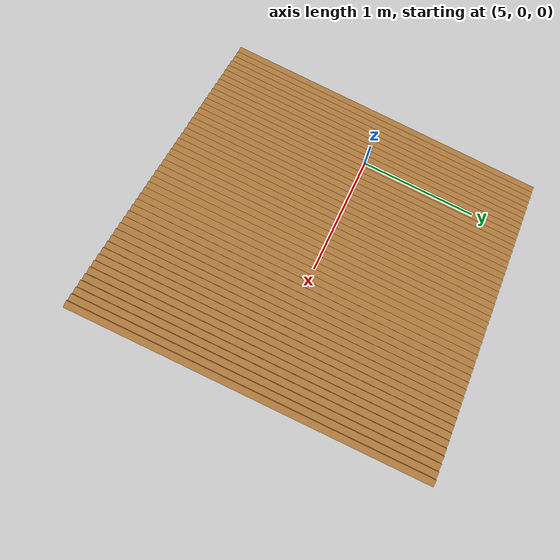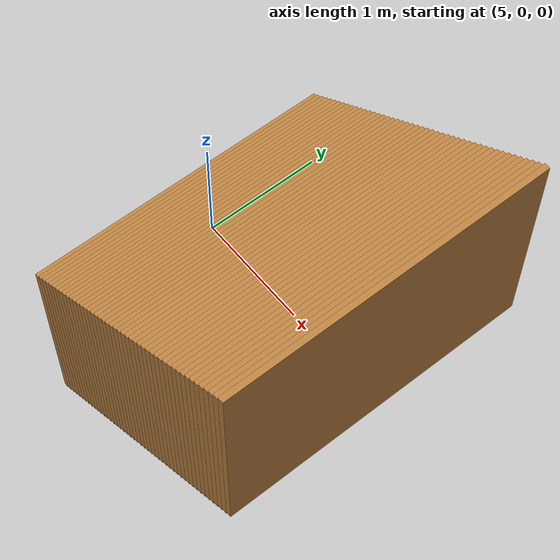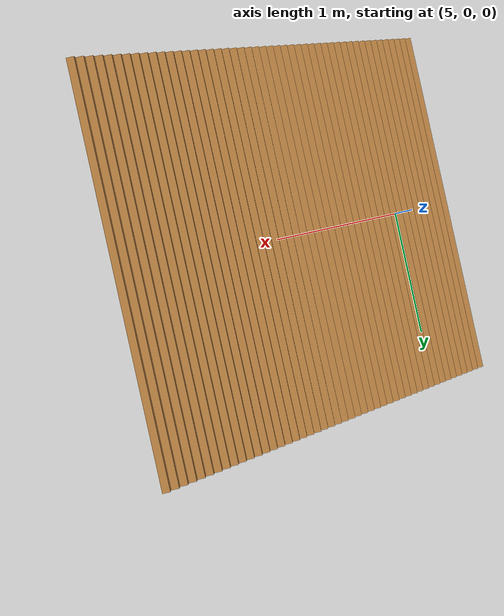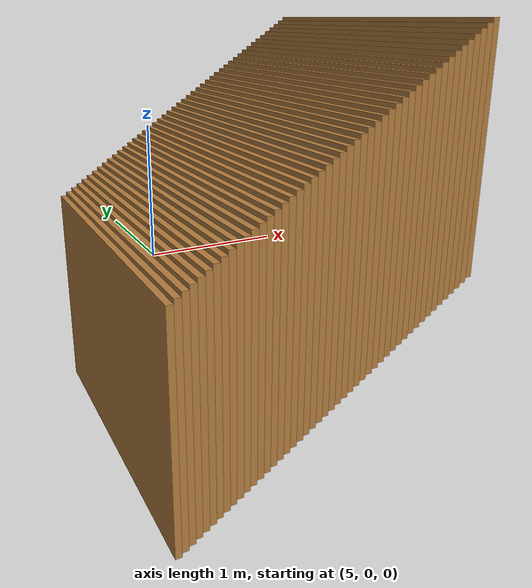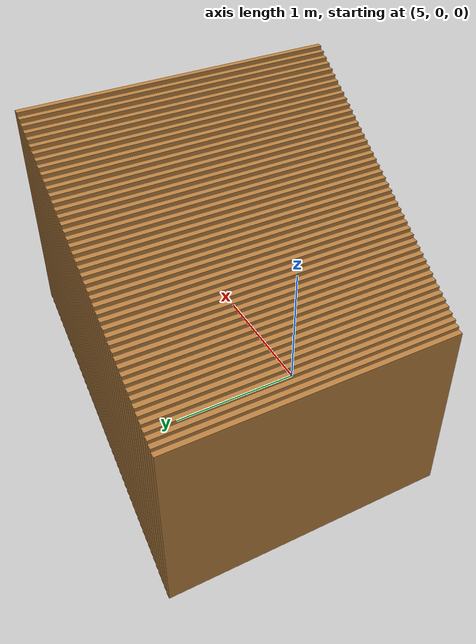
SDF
<sdf version="1.10">
 <world name="loader_soil_slice">
  <model name="soil_column_092">
   <static>true</static>
   <pose>4.625000 0 -0.701958 0 0 0</pose>
   <link name="link">
    <visual name="visual">
     <geometry><box><size>0.050000 2.700000 1.800000</size></box></geometry>
     <material><ambient>0.58 0.38 0.18 1</ambient><diffuse>0.72 0.50 0.25 1</diffuse></material>
    </visual>
   </link>
  </model>
  <model name="soil_column_093">
   <static>true</static>
   <pose>4.675000 0 -0.668232 0 0 0</pose>
   <link name="link">
    <visual name="visual">
     <geometry><box><size>0.050000 2.700000 1.800000</size></box></geometry>
     <material><ambient>0.58 0.38 0.18 1</ambient><diffuse>0.72 0.50 0.25 1</diffuse></material>
    </visual>
   </link>
  </model>
  <model name="soil_column_094">
   <static>true</static>
   <pose>4.725000 0 -0.634507 0 0 0</pose>
   <link name="link">
    <visual name="visual">
     <geometry><box><size>0.050000 2.700000 1.800000</size></box></geometry>
     <material><ambient>0.58 0.38 0.18 1</ambient><diffuse>0.72 0.50 0.25 1</diffuse></material>
    </visual>
   </link>
  </model>
  <model name="soil_column_095">
   <static>true</static>
   <pose>4.775000 0 -0.600781 0 0 0</pose>
   <link name="link">
    <visual name="visual">
     <geometry><box><size>0.050000 2.700000 1.800000</size></box></geometry>
     <material><ambient>0.58 0.38 0.18 1</ambient><diffuse>0.72 0.50 0.25 1</diffuse></material>
    </visual>
   </link>
  </model>
  <model name="soil_column_096">
   <static>true</static>
   <pose>4.825000 0 -0.567056 0 0 0</pose>
   <link name="link">
    <visual name="visual">
     <geometry><box><size>0.050000 2.700000 1.800000</size></box></geometry>
     <material><ambient>0.58 0.38 0.18 1</ambient><diffuse>0.72 0.50 0.25 1</diffuse></material>
    </visual>
   </link>
  </model>
  <model name="soil_column_097">
   <static>true</static>
   <pose>4.875000 0 -0.533331 0 0 0</pose>
   <link name="link">
    <visual name="visual">
     <geometry><box><size>0.050000 2.700000 1.800000</size></box></geometry>
     <material><ambient>0.58 0.38 0.18 1</ambient><diffuse>0.72 0.50 0.25 1</diffuse></material>
    </visual>
   </link>
  </model>
  <model name="soil_column_098">
   <static>true</static>
   <pose>4.925000 0 -0.499605 0 0 0</pose>
   <link name="link">
    <visual name="visual">
     <geometry><box><size>0.050000 2.700000 1.800000</size></box></geometry>
     <material><ambient>0.58 0.38 0.18 1</ambient><diffuse>0.72 0.50 0.25 1</diffuse></material>
    </visual>
   </link>
  </model>
  <model name="soil_column_099">
   <static>true</static>
   <pose>4.975000 0 -0.465880 0 0 0</pose>
   <link name="link">
    <visual name="visual">
     <geometry><box><size>0.050000 2.700000 1.800000</size></box></geometry>
     <material><ambient>0.58 0.38 0.18 1</ambient><diffuse>0.72 0.50 0.25 1</diffuse></material>
    </visual>
   </link>
  </model>
  <model name="soil_column_100">
   <static>true</static>
   <pose>5.025000 0 -0.432154 0 0 0</pose>
   <link name="link">
    <visual name="visual">
     <geometry><box><size>0.050000 2.700000 1.800000</size></box></geometry>
     <material><ambient>0.58 0.38 0.18 1</ambient><diffuse>0.72 0.50 0.25 1</diffuse></material>
    </visual>
   </link>
  </model>
  <model name="soil_column_101">
   <static>true</static>
   <pose>5.075000 0 -0.398429 0 0 0</pose>
   <link name="link">
    <visual name="visual">
     <geometry><box><size>0.050000 2.700000 1.800000</size></box></geometry>
     <material><ambient>0.58 0.38 0.18 1</ambient><diffuse>0.72 0.50 0.25 1</diffuse></material>
    </visual>
   </link>
  </model>
  <model name="soil_column_102">
   <static>true</static>
   <pose>5.125000 0 -0.364703 0 0 0</pose>
   <link name="link">
    <visual name="visual">
     <geometry><box><size>0.050000 2.700000 1.800000</size></box></geometry>
     <material><ambient>0.58 0.38 0.18 1</ambient><diffuse>0.72 0.50 0.25 1</diffuse></material>
    </visual>
   </link>
  </model>
  <model name="soil_column_103">
   <static>true</static>
   <pose>5.175000 0 -0.330978 0 0 0</pose>
   <link name="link">
    <visual name="visual">
     <geometry><box><size>0.050000 2.700000 1.800000</size></box></geometry>
     <material><ambient>0.58 0.38 0.18 1</ambient><diffuse>0.72 0.50 0.25 1</diffuse></material>
    </visual>
   </link>
  </model>
  <model name="soil_column_104">
   <static>true</static>
   <pose>5.225000 0 -0.297253 0 0 0</pose>
   <link name="link">
    <visual name="visual">
     <geometry><box><size>0.050000 2.700000 1.800000</size></box></geometry>
     <material><ambient>0.58 0.38 0.18 1</ambient><diffuse>0.72 0.50 0.25 1</diffuse></material>
    </visual>
   </link>
  </model>
  <model name="soil_column_105">
   <static>true</static>
   <pose>5.275000 0 -0.263527 0 0 0</pose>
   <link name="link">
    <visual name="visual">
     <geometry><box><size>0.050000 2.700000 1.800000</size></box></geometry>
     <material><ambient>0.58 0.38 0.18 1</ambient><diffuse>0.72 0.50 0.25 1</diffuse></material>
    </visual>
   </link>
  </model>
  <model name="soil_column_106">
   <static>true</static>
   <pose>5.325000 0 -0.229802 0 0 0</pose>
   <link name="link">
    <visual name="visual">
     <geometry><box><size>0.050000 2.700000 1.800000</size></box></geometry>
     <material><ambient>0.58 0.38 0.18 1</ambient><diffuse>0.72 0.50 0.25 1</diffuse></material>
    </visual>
   </link>
  </model>
  <model name="soil_column_107">
   <static>true</static>
   <pose>5.375000 0 -0.196076 0 0 0</pose>
   <link name="link">
    <visual name="visual">
     <geometry><box><size>0.050000 2.700000 1.800000</size></box></geometry>
     <material><ambient>0.58 0.38 0.18 1</ambient><diffuse>0.72 0.50 0.25 1</diffuse></material>
    </visual>
   </link>
  </model>
  <model name="soil_column_108">
   <static>true</static>
   <pose>5.425000 0 -0.162351 0 0 0</pose>
   <link name="link">
    <visual name="visual">
     <geometry><box><size>0.050000 2.700000 1.800000</size></box></geometry>
     <material><ambient>0.58 0.38 0.18 1</ambient><diffuse>0.72 0.50 0.25 1</diffuse></material>
    </visual>
   </link>
  </model>
  <model name="soil_column_109">
   <static>true</static>
   <pose>5.475000 0 -0.128625 0 0 0</pose>
   <link name="link">
    <visual name="visual">
     <geometry><box><size>0.050000 2.700000 1.800000</size></box></geometry>
     <material><ambient>0.58 0.38 0.18 1</ambient><diffuse>0.72 0.50 0.25 1</diffuse></material>
    </visual>
   </link>
  </model>
  <model name="soil_column_110">
   <static>true</static>
   <pose>5.525000 0 -0.094900 0 0 0</pose>
   <link name="link">
    <visual name="visual">
     <geometry><box><size>0.050000 2.700000 1.800000</size></box></geometry>
     <material><ambient>0.58 0.38 0.18 1</ambient><diffuse>0.72 0.50 0.25 1</diffuse></material>
    </visual>
   </link>
  </model>
  <model name="soil_column_111">
   <static>true</static>
   <pose>5.575000 0 -0.061175 0 0 0</pose>
   <link name="link">
    <visual name="visual">
     <geometry><box><size>0.050000 2.700000 1.800000</size></box></geometry>
     <material><ambient>0.58 0.38 0.18 1</ambient><diffuse>0.72 0.50 0.25 1</diffuse></material>
    </visual>
   </link>
  </model>
  <model name="soil_column_112">
   <static>true</static>
   <pose>5.625000 0 -0.027449 0 0 0</pose>
   <link name="link">
    <visual name="visual">
     <geometry><box><size>0.050000 2.700000 1.800000</size></box></geometry>
     <material><ambient>0.58 0.38 0.18 1</ambient><diffuse>0.72 0.50 0.25 1</diffuse></material>
    </visual>
   </link>
  </model>
  <model name="soil_column_113">
   <static>true</static>
   <pose>5.675000 0 0.006276 0 0 0</pose>
   <link name="link">
    <visual name="visual">
     <geometry><box><size>0.050000 2.700000 1.800000</size></box></geometry>
     <material><ambient>0.58 0.38 0.18 1</ambient><diffuse>0.72 0.50 0.25 1</diffuse></material>
    </visual>
   </link>
  </model>
  <model name="soil_column_114">
   <static>true</static>
   <pose>5.725000 0 0.040002 0 0 0</pose>
   <link name="link">
    <visual name="visual">
     <geometry><box><size>0.050000 2.700000 1.800000</size></box></geometry>
     <material><ambient>0.58 0.38 0.18 1</ambient><diffuse>0.72 0.50 0.25 1</diffuse></material>
    </visual>
   </link>
  </model>
  <model name="soil_column_115">
   <static>true</static>
   <pose>5.775000 0 0.073727 0 0 0</pose>
   <link name="link">
    <visual name="visual">
     <geometry><box><size>0.050000 2.700000 1.800000</size></box></geometry>
     <material><ambient>0.58 0.38 0.18 1</ambient><diffuse>0.72 0.50 0.25 1</diffuse></material>
    </visual>
   </link>
  </model>
  <model name="soil_column_116">
   <static>true</static>
   <pose>5.825000 0 0.107452 0 0 0</pose>
   <link name="link">
    <visual name="visual">
     <geometry><box><size>0.050000 2.700000 1.800000</size></box></geometry>
     <material><ambient>0.58 0.38 0.18 1</ambient><diffuse>0.72 0.50 0.25 1</diffuse></material>
    </visual>
   </link>
  </model>
  <model name="soil_column_117">
   <static>true</static>
   <pose>5.875000 0 0.141178 0 0 0</pose>
   <link name="link">
    <visual name="visual">
     <geometry><box><size>0.050000 2.700000 1.800000</size></box></geometry>
     <material><ambient>0.58 0.38 0.18 1</ambient><diffuse>0.72 0.50 0.25 1</diffuse></material>
    </visual>
   </link>
  </model>
  <model name="soil_column_118">
   <static>true</static>
   <pose>5.925000 0 0.174903 0 0 0</pose>
   <link name="link">
    <visual name="visual">
     <geometry><box><size>0.050000 2.700000 1.800000</size></box></geometry>
     <material><ambient>0.58 0.38 0.18 1</ambient><diffuse>0.72 0.50 0.25 1</diffuse></material>
    </visual>
   </link>
  </model>
  <model name="soil_column_119">
   <static>true</static>
   <pose>5.975000 0 0.208629 0 0 0</pose>
   <link name="link">
    <visual name="visual">
     <geometry><box><size>0.050000 2.700000 1.800000</size></box></geometry>
     <material><ambient>0.58 0.38 0.18 1</ambient><diffuse>0.72 0.50 0.25 1</diffuse></material>
    </visual>
   </link>
  </model>
  <model name="soil_column_120">
   <static>true</static>
   <pose>6.025000 0 0.242354 0 0 0</pose>
   <link name="link">
    <visual name="visual">
     <geometry><box><size>0.050000 2.700000 1.800000</size></box></geometry>
     <material><ambient>0.58 0.38 0.18 1</ambient><diffuse>0.72 0.50 0.25 1</diffuse></material>
    </visual>
   </link>
  </model>
  <model name="soil_column_121">
   <static>true</static>
   <pose>6.075000 0 0.276080 0 0 0</pose>
   <link name="link">
    <visual name="visual">
     <geometry><box><size>0.050000 2.700000 1.800000</size></box></geometry>
     <material><ambient>0.58 0.38 0.18 1</ambient><diffuse>0.72 0.50 0.25 1</diffuse></material>
    </visual>
   </link>
  </model>
  <model name="soil_column_122">
   <static>true</static>
   <pose>6.125000 0 0.309805 0 0 0</pose>
   <link name="link">
    <visual name="visual">
     <geometry><box><size>0.050000 2.700000 1.800000</size></box></geometry>
     <material><ambient>0.58 0.38 0.18 1</ambient><diffuse>0.72 0.50 0.25 1</diffuse></material>
    </visual>
   </link>
  </model>
  <model name="soil_column_123">
   <static>true</static>
   <pose>6.175000 0 0.343530 0 0 0</pose>
   <link name="link">
    <visual name="visual">
     <geometry><box><size>0.050000 2.700000 1.800000</size></box></geometry>
     <material><ambient>0.58 0.38 0.18 1</ambient><diffuse>0.72 0.50 0.25 1</diffuse></material>
    </visual>
   </link>
  </model>
  <model name="soil_column_124">
   <static>true</static>
   <pose>6.225000 0 0.377256 0 0 0</pose>
   <link name="link">
    <visual name="visual">
     <geometry><box><size>0.050000 2.700000 1.800000</size></box></geometry>
     <material><ambient>0.58 0.38 0.18 1</ambient><diffuse>0.72 0.50 0.25 1</diffuse></material>
    </visual>
   </link>
  </model>
  <model name="soil_column_125">
   <static>true</static>
   <pose>6.275000 0 0.410981 0 0 0</pose>
   <link name="link">
    <visual name="visual">
     <geometry><box><size>0.050000 2.700000 1.800000</size></box></geometry>
     <material><ambient>0.58 0.38 0.18 1</ambient><diffuse>0.72 0.50 0.25 1</diffuse></material>
    </visual>
   </link>
  </model>
  <model name="soil_column_126">
   <static>true</static>
   <pose>6.325000 0 0.444707 0 0 0</pose>
   <link name="link">
    <visual name="visual">
     <geometry><box><size>0.050000 2.700000 1.800000</size></box></geometry>
     <material><ambient>0.58 0.38 0.18 1</ambient><diffuse>0.72 0.50 0.25 1</diffuse></material>
    </visual>
   </link>
  </model>
  <model name="soil_column_127">
   <static>true</static>
   <pose>6.375000 0 0.478432 0 0 0</pose>
   <link name="link">
    <visual name="visual">
     <geometry><box><size>0.050000 2.700000 1.800000</size></box></geometry>
     <material><ambient>0.58 0.38 0.18 1</ambient><diffuse>0.72 0.50 0.25 1</diffuse></material>
    </visual>
   </link>
  </model>
  <model name="soil_column_128">
   <static>true</static>
   <pose>6.425000 0 0.512158 0 0 0</pose>
   <link name="link">
    <visual name="visual">
     <geometry><box><size>0.050000 2.700000 1.800000</size></box></geometry>
     <material><ambient>0.58 0.38 0.18 1</ambient><diffuse>0.72 0.50 0.25 1</diffuse></material>
    </visual>
   </link>
  </model>
  <model name="soil_column_129">
   <static>true</static>
   <pose>6.475000 0 0.545883 0 0 0</pose>
   <link name="link">
    <visual name="visual">
     <geometry><box><size>0.050000 2.700000 1.800000</size></box></geometry>
     <material><ambient>0.58 0.38 0.18 1</ambient><diffuse>0.72 0.50 0.25 1</diffuse></material>
    </visual>
   </link>
  </model>
  <model name="soil_column_130">
   <static>true</static>
   <pose>6.525000 0 0.579608 0 0 0</pose>
   <link name="link">
    <visual name="visual">
     <geometry><box><size>0.050000 2.700000 1.800000</size></box></geometry>
     <material><ambient>0.58 0.38 0.18 1</ambient><diffuse>0.72 0.50 0.25 1</diffuse></material>
    </visual>
   </link>
  </model>
  <model name="soil_column_131">
   <static>true</static>
   <pose>6.575000 0 0.613334 0 0 0</pose>
   <link name="link">
    <visual name="visual">
     <geometry><box><size>0.050000 2.700000 1.800000</size></box></geometry>
     <material><ambient>0.58 0.38 0.18 1</ambient><diffuse>0.72 0.50 0.25 1</diffuse></material>
    </visual>
   </link>
  </model>
  <model name="soil_column_132">
   <static>true</static>
   <pose>6.625000 0 0.647059 0 0 0</pose>
   <link name="link">
    <visual name="visual">
     <geometry><box><size>0.050000 2.700000 1.800000</size></box></geometry>
     <material><ambient>0.58 0.38 0.18 1</ambient><diffuse>0.72 0.50 0.25 1</diffuse></material>
    </visual>
   </link>
  </model>
  <model name="soil_column_133">
   <static>true</static>
   <pose>6.675000 0 0.680785 0 0 0</pose>
   <link name="link">
    <visual name="visual">
     <geometry><box><size>0.050000 2.700000 1.800000</size></box></geometry>
     <material><ambient>0.58 0.38 0.18 1</ambient><diffuse>0.72 0.50 0.25 1</diffuse></material>
    </visual>
   </link>
  </model>
  <model name="soil_column_134">
   <static>true</static>
   <pose>6.725000 0 0.714510 0 0 0</pose>
   <link name="link">
    <visual name="visual">
     <geometry><box><size>0.050000 2.700000 1.800000</size></box></geometry>
     <material><ambient>0.58 0.38 0.18 1</ambient><diffuse>0.72 0.50 0.25 1</diffuse></material>
    </visual>
   </link>
  </model>
  <model name="soil_column_135">
   <static>true</static>
   <pose>6.775000 0 0.748236 0 0 0</pose>
   <link name="link">
    <visual name="visual">
     <geometry><box><size>0.050000 2.700000 1.800000</size></box></geometry>
     <material><ambient>0.58 0.38 0.18 1</ambient><diffuse>0.72 0.50 0.25 1</diffuse></material>
    </visual>
   </link>
  </model>
  <model name="soil_column_136">
   <static>true</static>
   <pose>6.825000 0 0.781961 0 0 0</pose>
   <link name="link">
    <visual name="visual">
     <geometry><box><size>0.050000 2.700000 1.800000</size></box></geometry>
     <material><ambient>0.58 0.38 0.18 1</ambient><diffuse>0.72 0.50 0.25 1</diffuse></material>
    </visual>
   </link>
  </model>
  <model name="soil_column_137">
   <static>true</static>
   <pose>6.875000 0 0.815686 0 0 0</pose>
   <link name="link">
    <visual name="visual">
     <geometry><box><size>0.050000 2.700000 1.800000</size></box></geometry>
     <material><ambient>0.58 0.38 0.18 1</ambient><diffuse>0.72 0.50 0.25 1</diffuse></material>
    </visual>
   </link>
  </model>
  <model name="soil_column_138">
   <static>true</static>
   <pose>6.925000 0 0.849412 0 0 0</pose>
   <link name="link">
    <visual name="visual">
     <geometry><box><size>0.050000 2.700000 1.800000</size></box></geometry>
     <material><ambient>0.58 0.38 0.18 1</ambient><diffuse>0.72 0.50 0.25 1</diffuse></material>
    </visual>
   </link>
  </model>
 </world>
</sdf>
